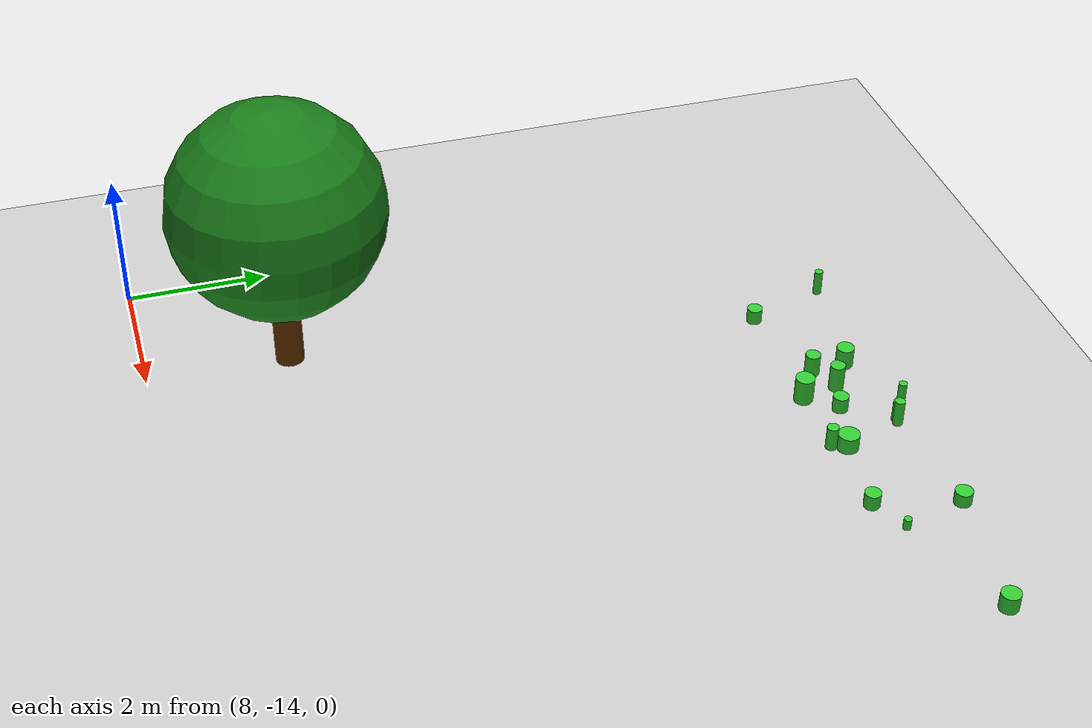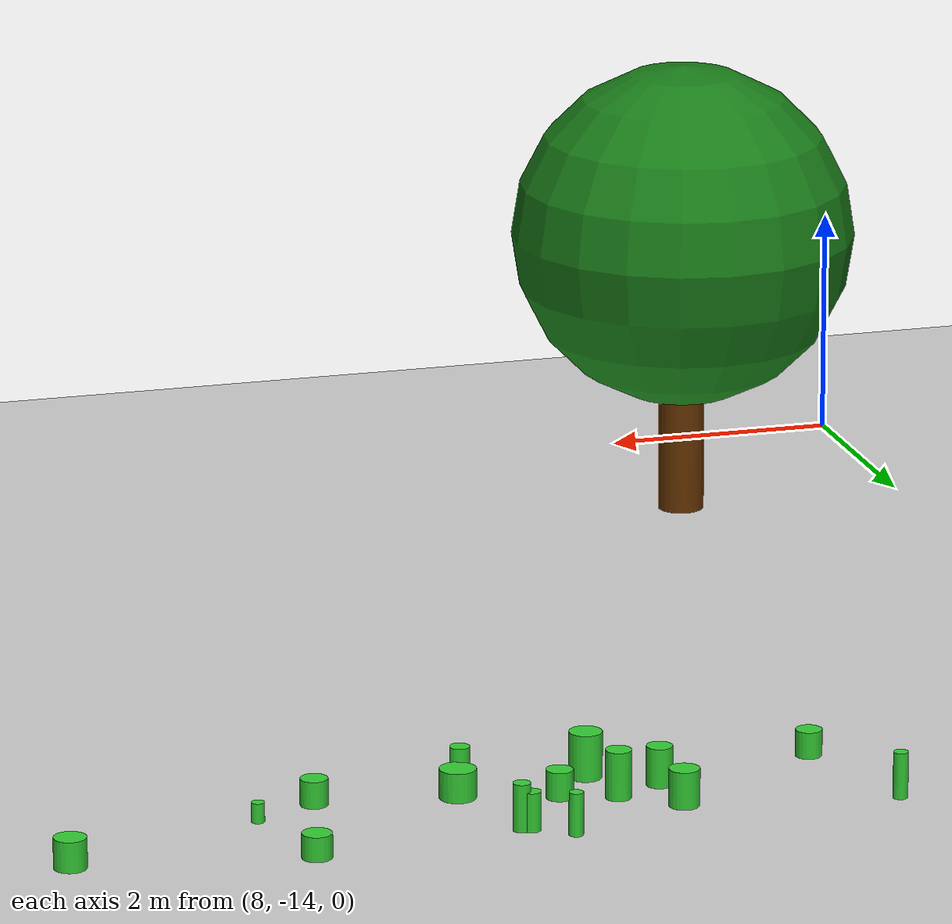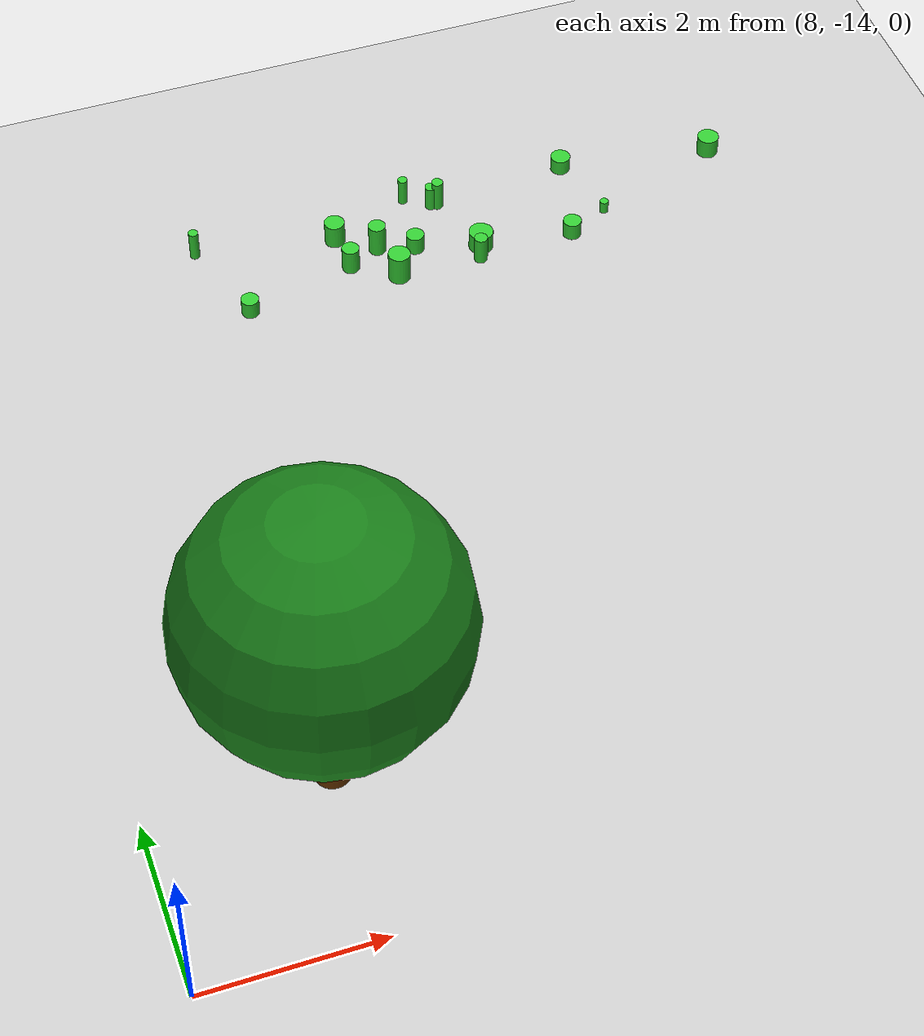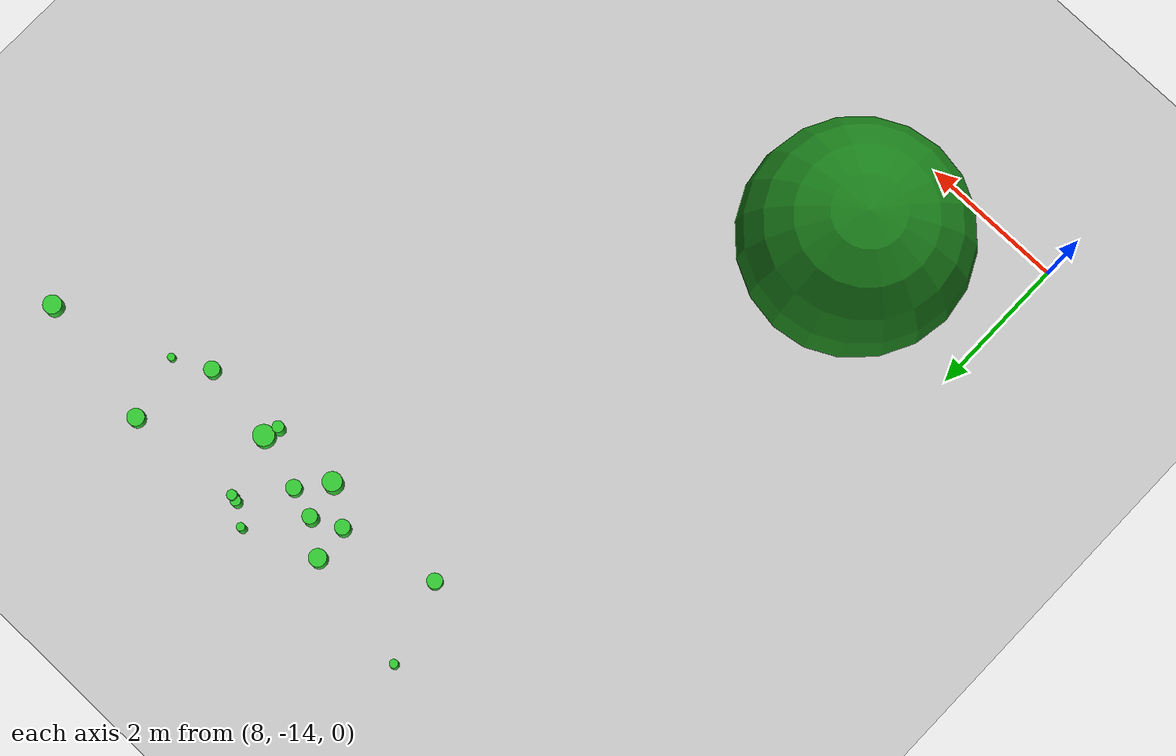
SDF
<sdf version="1.6">
 <world name="street_park_world">
  <include><uri>model://sun</uri></include>
  <include><uri>model://ground_plane</uri></include>
  <model name="tree_23">
   <pose>10 -12 0 0 0 0</pose>
   <static>true</static>
   <link name="trunk">
    <pose>0 0 1 0 0 0</pose>
    <collision name="collision">
     <geometry><cylinder><radius>0.2</radius><length>2</length></cylinder></geometry>
    </collision>
    <visual name="visual">
     <geometry><cylinder><radius>0.2</radius><length>2</length></cylinder></geometry>
     <material><ambient>0.4 0.2 0.0 1</ambient></material>
    </visual>
   </link>
   <link name="leaves">
    <pose>0 0 2.5 0 0 0</pose>
    <collision name="collision"><geometry><sphere><radius>1.5</radius></sphere></geometry></collision>
    <visual name="visual">
     <geometry><sphere><radius>1.5</radius></sphere></geometry>
     <material><ambient>0.1 0.5 0.1 1</ambient></material>
    </visual>
   </link>
  </model>
  <model name="weed_67">
   <pose>13.857868593965932 -5.489047649986979 0.17256562026731925 0 0 0</pose>
   <static>true</static>
   <link name="link">
    <collision name="collision">
     <geometry>
      <cylinder><radius>0.07993787521999779</radius><length>0.3451312405346385</length></cylinder>
     </geometry>
    </collision>
    <visual name="visual">
     <geometry>
      <cylinder><radius>0.07993787521999779</radius><length>0.3451312405346385</length></cylinder>
     </geometry>
     <material><ambient>0.2 0.8 0.2 1</ambient></material>
    </visual>
   </link>
  </model>
  <model name="weed_73">
   <pose>12.340203957124167 -5.133262632591912 0.16118463625218965 0 0 0</pose>
   <static>true</static>
   <link name="link">
    <collision name="collision">
     <geometry>
      <cylinder><radius>0.10516804211263912</radius><length>0.3223692725043793</length></cylinder>
     </geometry>
    </collision>
    <visual name="visual">
     <geometry>
      <cylinder><radius>0.10516804211263912</radius><length>0.3223692725043793</length></cylinder>
     </geometry>
     <material><ambient>0.2 0.8 0.2 1</ambient></material>
    </visual>
   </link>
  </model>
  <model name="weed_87">
   <pose>12.733356474686495 -4.940450261895915 0.19717245307973902 0 0 0</pose>
   <static>true</static>
   <link name="link">
    <collision name="collision">
     <geometry>
      <cylinder><radius>0.10362157324787219</radius><length>0.39434490615947804</length></cylinder>
     </geometry>
    </collision>
    <visual name="visual">
     <geometry>
      <cylinder><radius>0.10362157324787219</radius><length>0.39434490615947804</length></cylinder>
     </geometry>
     <material><ambient>0.2 0.8 0.2 1</ambient></material>
    </visual>
   </link>
  </model>
  <model name="weed_103">
   <pose>15.551610350145033 -5.185503067603796 0.0798694899089865 0 0 0</pose>
   <static>true</static>
   <link name="link">
    <collision name="collision">
     <geometry>
      <cylinder><radius>0.05244253877268264</radius><length>0.159738979817973</length></cylinder>
     </geometry>
    </collision>
    <visual name="visual">
     <geometry>
      <cylinder><radius>0.05244253877268264</radius><length>0.159738979817973</length></cylinder>
     </geometry>
     <material><ambient>0.2 0.8 0.2 1</ambient></material>
    </visual>
   </link>
  </model>
  <model name="weed_125">
   <pose>11.003126487665824 -5.462246967332807 0.10910303845095572 0 0 0</pose>
   <static>true</static>
   <link name="link">
    <collision name="collision">
     <geometry>
      <cylinder><radius>0.10643919830247742</radius><length>0.21820607690191143</length></cylinder>
     </geometry>
    </collision>
    <visual name="visual">
     <geometry>
      <cylinder><radius>0.10643919830247742</radius><length>0.21820607690191143</length></cylinder>
     </geometry>
     <material><ambient>0.2 0.8 0.2 1</ambient></material>
    </visual>
   </link>
  </model>
  <model name="weed_131">
   <pose>13.657918971950046 -4.444073514316663 0.19244175990739837 0 0 0</pose>
   <static>true</static>
   <link name="link">
    <collision name="collision">
     <geometry>
      <cylinder><radius>0.06993606823625328</radius><length>0.38488351981479674</length></cylinder>
     </geometry>
    </collision>
    <visual name="visual">
     <geometry>
      <cylinder><radius>0.06993606823625328</radius><length>0.38488351981479674</length></cylinder>
     </geometry>
     <material><ambient>0.2 0.8 0.2 1</ambient></material>
    </visual>
   </link>
  </model>
  <model name="weed_151">
   <pose>17.154840550187075 -4.595735940362666 0.12362320026178794 0 0 0</pose>
   <static>true</static>
   <link name="link">
    <collision name="collision">
     <geometry>
      <cylinder><radius>0.12929328681323174</radius><length>0.24724640052357588</length></cylinder>
     </geometry>
    </collision>
    <visual name="visual">
     <geometry>
      <cylinder><radius>0.12929328681323174</radius><length>0.24724640052357588</length></cylinder>
     </geometry>
     <material><ambient>0.2 0.8 0.2 1</ambient></material>
    </visual>
   </link>
  </model>
  <model name="weed_175">
   <pose>13.287125106223264 -4.228223976702351 0.17399467394750895 0 0 0</pose>
   <static>true</static>
   <link name="link">
    <collision name="collision">
     <geometry>
      <cylinder><radius>0.05714098368558142</radius><length>0.3479893478950179</length></cylinder>
     </geometry>
    </collision>
    <visual name="visual">
     <geometry>
      <cylinder><radius>0.05714098368558142</radius><length>0.3479893478950179</length></cylinder>
     </geometry>
     <material><ambient>0.2 0.8 0.2 1</ambient></material>
    </visual>
   </link>
  </model>
  <model name="weed_185">
   <pose>15.31201585690669 -4.299173667839506 0.09947054953684481 0 0 0</pose>
   <static>true</static>
   <link name="link">
    <collision name="collision">
     <geometry>
      <cylinder><radius>0.11936736739834325</radius><length>0.19894109907368962</length></cylinder>
     </geometry>
    </collision>
    <visual name="visual">
     <geometry>
      <cylinder><radius>0.11936736739834325</radius><length>0.19894109907368962</length></cylinder>
     </geometry>
     <material><ambient>0.2 0.8 0.2 1</ambient></material>
    </visual>
   </link>
  </model>
  <model name="weed_209">
   <pose>13.930319378496044 -5.283894293719832 0.1204235901477098 0 0 0</pose>
   <static>true</static>
   <link name="link">
    <collision name="collision">
     <geometry>
      <cylinder><radius>0.14692036305742173</radius><length>0.2408471802954196</length></cylinder>
     </geometry>
    </collision>
    <visual name="visual">
     <geometry>
      <cylinder><radius>0.14692036305742173</radius><length>0.2408471802954196</length></cylinder>
     </geometry>
     <material><ambient>0.2 0.8 0.2 1</ambient></material>
    </visual>
   </link>
  </model>
  <model name="weed_229">
   <pose>12.295609020530271 -4.630752371617574 0.15166466879350393 0 0 0</pose>
   <static>true</static>
   <link name="link">
    <collision name="collision">
     <geometry>
      <cylinder><radius>0.1220928376670709</radius><length>0.30332933758700786</length></cylinder>
     </geometry>
    </collision>
    <visual name="visual">
     <geometry>
      <cylinder><radius>0.1220928376670709</radius><length>0.30332933758700786</length></cylinder>
     </geometry>
     <material><ambient>0.2 0.8 0.2 1</ambient></material>
    </visual>
   </link>
  </model>
  <model name="weed_231">
   <pose>13.170654800147055 -5.067493962466309 0.11612347852442174 0 0 0</pose>
   <static>true</static>
   <link name="link">
    <collision name="collision">
     <geometry>
      <cylinder><radius>0.10795738053684027</radius><length>0.2322469570488435</length></cylinder>
     </geometry>
    </collision>
    <visual name="visual">
     <geometry>
      <cylinder><radius>0.10795738053684027</radius><length>0.2322469570488435</length></cylinder>
     </geometry>
     <material><ambient>0.2 0.8 0.2 1</ambient></material>
    </visual>
   </link>
  </model>
  <model name="weed_269">
   <pose>13.582499839317485 -4.423452177853366 0.15812598749863988 0 0 0</pose>
   <static>true</static>
   <link name="link">
    <collision name="collision">
     <geometry>
      <cylinder><radius>0.07150230663274969</radius><length>0.31625197499727975</length></cylinder>
     </geometry>
    </collision>
    <visual name="visual">
     <geometry>
      <cylinder><radius>0.07150230663274969</radius><length>0.31625197499727975</length></cylinder>
     </geometry>
     <material><ambient>0.2 0.8 0.2 1</ambient></material>
    </visual>
   </link>
  </model>
  <model name="weed_281">
   <pose>12.842924744684822 -5.463244635964983 0.1893626436492405 0 0 0</pose>
   <static>true</static>
   <link name="link">
    <collision name="collision">
     <geometry>
      <cylinder><radius>0.13294607899596628</radius><length>0.378725287298481</length></cylinder>
     </geometry>
    </collision>
    <visual name="visual">
     <geometry>
      <cylinder><radius>0.13294607899596628</radius><length>0.378725287298481</length></cylinder>
     </geometry>
     <material><ambient>0.2 0.8 0.2 1</ambient></material>
    </visual>
   </link>
  </model>
  <model name="weed_291">
   <pose>15.041930286271459 -5.436415692353801 0.10928950941314436 0 0 0</pose>
   <static>true</static>
   <link name="link">
    <collision name="collision">
     <geometry>
      <cylinder><radius>0.10993249569444505</radius><length>0.21857901882628872</length></cylinder>
     </geometry>
    </collision>
    <visual name="visual">
     <geometry>
      <cylinder><radius>0.10993249569444505</radius><length>0.21857901882628872</length></cylinder>
     </geometry>
     <material><ambient>0.2 0.8 0.2 1</ambient></material>
    </visual>
   </link>
  </model>
  <model name="weed_299">
   <pose>10.631273697381623 -4.33516372169961 0.18796546276120774 0 0 0</pose>
   <static>true</static>
   <link name="link">
    <collision name="collision">
     <geometry>
      <cylinder><radius>0.05881298812978847</radius><length>0.37593092552241547</length></cylinder>
     </geometry>
    </collision>
    <visual name="visual">
     <geometry>
      <cylinder><radius>0.05881298812978847</radius><length>0.37593092552241547</length></cylinder>
     </geometry>
     <material><ambient>0.2 0.8 0.2 1</ambient></material>
    </visual>
   </link>
  </model>
 </world>
</sdf>
